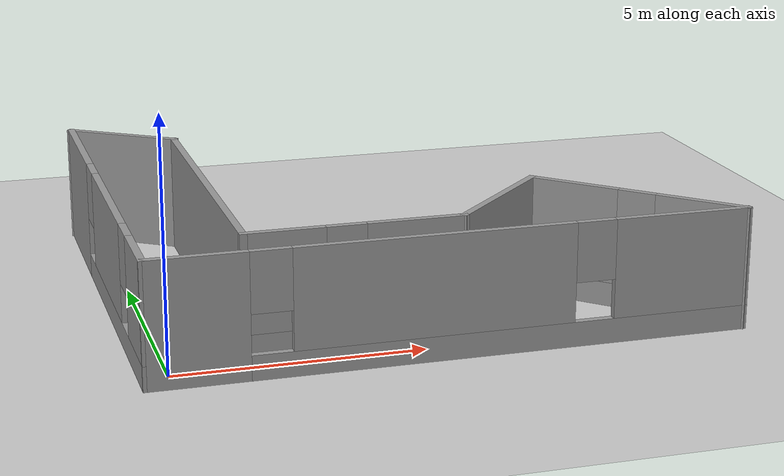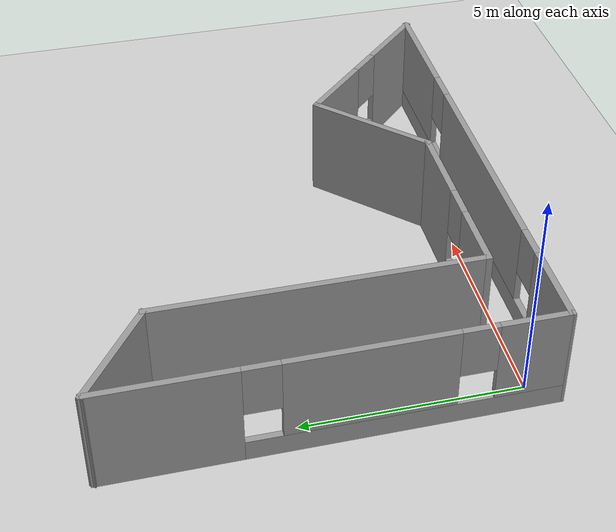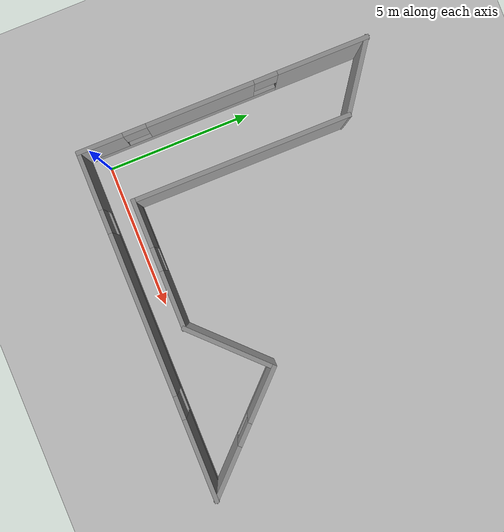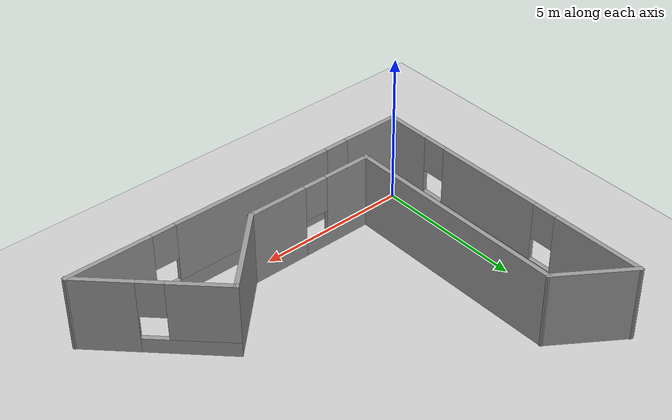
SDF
<sdf version="1.6">
 <world name="default">
  <light name="sun" type="directional">
   <pose>0 0 10 0 -0 0</pose>
   <diffuse>0.8 0.8 0.8 1</diffuse>
   <specular>0.2 0.2 0.2 1</specular>
   <attenuation>
    <range>1000</range>
    <constant>0.9</constant>
    <linear>0.01</linear>
    <quadratic>0.001</quadratic>
   </attenuation>
   <direction>-0.5 0.1 -0.9</direction>
  </light>
  <model name="ground_plane">
   <static>1</static>
   <link name="link">
    <collision name="collision">
     <geometry><plane><normal>0 0 1</normal><size>100 100</size></plane></geometry>
     <surface>
      <contact><collide_bitmask>65535</collide_bitmask></contact>
      <friction><ode><mu>100</mu><mu2>50</mu2></ode></friction>
     </surface>
    </collision>
    <visual name="visual">
     <cast_shadows>0</cast_shadows>
     <geometry><plane><normal>0 0 1</normal><size>100 100</size></plane></geometry>
     <material>
      <script><uri>file://media/materials/scripts/gazebo.material</uri><name>Gazebo/Grey</name></script>
     </material>
    </visual>
   </link>
  </model>
  <gravity>0 0 -9.8</gravity>
  <magnetic_field>6e-06 2.3e-05 -4.2e-05</magnetic_field>
  <atmosphere type="adiabatic"/>
  <physics name="default_physics" default="0" type="ode">
   <max_step_size>0.001</max_step_size>
   <real_time_factor>1</real_time_factor>
   <real_time_update_rate>1000</real_time_update_rate>
  </physics>
  <scene><ambient>0.4 0.4 0.4 1</ambient><background>0.7 0.7 0.7 1</background><shadows>1</shadows></scene>
  <spherical_coordinates>
   <surface_model>EARTH_WGS84</surface_model>
   <latitude_deg>0</latitude_deg>
   <longitude_deg>0</longitude_deg>
   <elevation>0</elevation>
   <heading_deg>0</heading_deg>
  </spherical_coordinates>
  <model name="museum">
   <pose>5.40787 4.33049 0 0 -0 0</pose>
   <link name="Wall_0">
    <pose>-5.92587 0.000867 0 0 0 -1.56784</pose>
    <visual name="Wall_0_Visual_0">
     <pose>-3.4362 0 1.25 0 -0 0</pose>
     <geometry><box><size>3.1276 0.15 2.5</size></box></geometry>
     <material>
      <script><uri>file://media/materials/scripts/gazebo.material</uri><name>Gazebo/Grey</name></script>
      <ambient>1 1 1 1</ambient>
     </material>
     <meta><layer>0</layer></meta>
    </visual>
    <collision name="Wall_0_Collision_0">
     <geometry><box><size>3.1276 0.15 2.5</size></box></geometry>
     <pose>-3.4362 0 1.25 0 -0 0</pose>
    </collision>
    <visual name="Wall_0_Visual_1">
     <pose>1.5638 0 0.25 0 -0 0</pose>
     <geometry><box><size>6.8724 0.15 0.5</size></box></geometry>
     <material>
      <script><uri>file://media/materials/scripts/gazebo.material</uri><name>Gazebo/Grey</name></script>
      <ambient>1 1 1 1</ambient>
     </material>
     <meta><layer>0</layer></meta>
    </visual>
    <collision name="Wall_0_Collision_1">
     <geometry><box><size>6.8724 0.15 0.5</size></box></geometry>
     <pose>1.5638 0 0.25 0 -0 0</pose>
    </collision>
    <visual name="Wall_0_Visual_2">
     <pose>0.765762 0 1.5 0 -0 0</pose>
     <geometry><box><size>3.67633 0.15 2</size></box></geometry>
     <material>
      <script><uri>file://media/materials/scripts/gazebo.material</uri><name>Gazebo/Grey</name></script>
      <ambient>1 1 1 1</ambient>
     </material>
     <meta><layer>0</layer></meta>
    </visual>
    <collision name="Wall_0_Collision_2">
     <geometry><box><size>3.67633 0.15 2</size></box></geometry>
     <pose>0.765762 0 1.5 0 -0 0</pose>
    </collision>
    <visual name="Wall_0_Visual_3">
     <pose>4.20196 0 1.5 0 -0 0</pose>
     <geometry><box><size>1.59607 0.15 2</size></box></geometry>
     <material>
      <script><uri>file://media/materials/scripts/gazebo.material</uri><name>Gazebo/Grey</name></script>
      <ambient>1 1 1 1</ambient>
     </material>
     <meta><layer>0</layer></meta>
    </visual>
    <collision name="Wall_0_Collision_3">
     <geometry><box><size>1.59607 0.15 2</size></box></geometry>
     <pose>4.20196 0 1.5 0 -0 0</pose>
    </collision>
    <visual name="Wall_0_Visual_4">
     <pose>-1.4724 0 1.9 0 -0 0</pose>
     <geometry><box><size>0.8 0.15 1.2</size></box></geometry>
     <material>
      <script><uri>file://media/materials/scripts/gazebo.material</uri><name>Gazebo/Grey</name></script>
      <ambient>1 1 1 1</ambient>
     </material>
     <meta><layer>0</layer></meta>
    </visual>
    <collision name="Wall_0_Collision_4">
     <geometry><box><size>0.8 0.15 1.2</size></box></geometry>
     <pose>-1.4724 0 1.9 0 -0 0</pose>
    </collision>
    <visual name="Wall_0_Visual_5">
     <pose>3.00393 0 1.9 0 -0 0</pose>
     <geometry><box><size>0.8 0.15 1.2</size></box></geometry>
     <material>
      <script><uri>file://media/materials/scripts/gazebo.material</uri><name>Gazebo/Grey</name></script>
      <ambient>1 1 1 1</ambient>
     </material>
     <meta><layer>0</layer></meta>
    </visual>
    <collision name="Wall_0_Collision_5">
     <geometry><box><size>0.8 0.15 1.2</size></box></geometry>
     <pose>3.00393 0 1.9 0 -0 0</pose>
    </collision>
   </link>
   <link name="Wall_2">
    <pose>0.01371 -4.92411 0 0 -0 0</pose>
    <visual name="Wall_2_Visual_0">
     <pose>-4.99135 0 1.25 0 -0 0</pose>
     <geometry><box><size>2.01729 0.15 2.5</size></box></geometry>
     <material>
      <script><uri>file://media/materials/scripts/gazebo.material</uri><name>Gazebo/Grey</name></script>
      <ambient>1 1 1 1</ambient>
     </material>
     <meta><layer>0</layer></meta>
    </visual>
    <collision name="Wall_2_Collision_0">
     <geometry><box><size>2.01729 0.15 2.5</size></box></geometry>
     <pose>-4.99135 0 1.25 0 -0 0</pose>
    </collision>
    <visual name="Wall_2_Visual_1">
     <pose>1.00865 0 0.25 0 -0 0</pose>
     <geometry><box><size>9.98271 0.15 0.5</size></box></geometry>
     <material>
      <script><uri>file://media/materials/scripts/gazebo.material</uri><name>Gazebo/Grey</name></script>
      <ambient>1 1 1 1</ambient>
     </material>
     <meta><layer>0</layer></meta>
    </visual>
    <collision name="Wall_2_Collision_1">
     <geometry><box><size>9.98271 0.15 0.5</size></box></geometry>
     <pose>1.00865 0 0.25 0 -0 0</pose>
    </collision>
    <visual name="Wall_2_Visual_2">
     <pose>-0.409254 0 1.5 0 -0 0</pose>
     <geometry><box><size>5.54691 0.15 2</size></box></geometry>
     <material>
      <script><uri>file://media/materials/scripts/gazebo.material</uri><name>Gazebo/Grey</name></script>
      <ambient>1 1 1 1</ambient>
     </material>
     <meta><layer>0</layer></meta>
    </visual>
    <collision name="Wall_2_Collision_2">
     <geometry><box><size>5.54691 0.15 2</size></box></geometry>
     <pose>-0.409254 0 1.5 0 -0 0</pose>
    </collision>
    <visual name="Wall_2_Visual_3">
     <pose>4.5821 0 1.5 0 -0 0</pose>
     <geometry><box><size>2.8358 0.15 2</size></box></geometry>
     <material>
      <script><uri>file://media/materials/scripts/gazebo.material</uri><name>Gazebo/Grey</name></script>
      <ambient>1 1 1 1</ambient>
     </material>
     <meta><layer>0</layer></meta>
    </visual>
    <collision name="Wall_2_Collision_3">
     <geometry><box><size>2.8358 0.15 2</size></box></geometry>
     <pose>4.5821 0 1.5 0 -0 0</pose>
    </collision>
    <visual name="Wall_2_Visual_4">
     <pose>-3.58271 0 1.9 0 -0 0</pose>
     <geometry><box><size>0.8 0.15 1.2</size></box></geometry>
     <material>
      <script><uri>file://media/materials/scripts/gazebo.material</uri><name>Gazebo/Grey</name></script>
      <ambient>1 1 1 1</ambient>
     </material>
     <meta><layer>0</layer></meta>
    </visual>
    <collision name="Wall_2_Collision_4">
     <geometry><box><size>0.8 0.15 1.2</size></box></geometry>
     <pose>-3.58271 0 1.9 0 -0 0</pose>
    </collision>
    <visual name="Wall_2_Visual_5">
     <pose>2.7642 0 1.9 0 -0 0</pose>
     <geometry><box><size>0.8 0.15 1.2</size></box></geometry>
     <material>
      <script><uri>file://media/materials/scripts/gazebo.material</uri><name>Gazebo/Grey</name></script>
      <ambient>1 1 1 1</ambient>
     </material>
     <meta><layer>0</layer></meta>
    </visual>
    <collision name="Wall_2_Collision_5">
     <geometry><box><size>0.8 0.15 1.2</size></box></geometry>
     <pose>2.7642 0 1.9 0 -0 0</pose>
    </collision>
   </link>
   <link name="Wall_5">
    <pose>4.31236 -3.29777 0 0 -0 2.35619</pose>
    <visual name="Wall_5_Visual_0">
     <pose>-1.4024 0 1.25 0 -0 0</pose>
     <geometry><box><size>1.9452 0.15 2.5</size></box></geometry>
     <material>
      <script><uri>file://media/materials/scripts/gazebo.material</uri><name>Gazebo/Grey</name></script>
      <ambient>1 1 1 1</ambient>
     </material>
     <meta><layer>0</layer></meta>
    </visual>
    <collision name="Wall_5_Collision_0">
     <geometry><box><size>1.9452 0.15 2.5</size></box></geometry>
     <pose>-1.4024 0 1.25 0 -0 0</pose>
    </collision>
    <visual name="Wall_5_Visual_1">
     <pose>0.9726 0 0.25 0 -0 0</pose>
     <geometry><box><size>2.8048 0.15 0.5</size></box></geometry>
     <material>
      <script><uri>file://media/materials/scripts/gazebo.material</uri><name>Gazebo/Grey</name></script>
      <ambient>1 1 1 1</ambient>
     </material>
     <meta><layer>0</layer></meta>
    </visual>
    <collision name="Wall_5_Collision_1">
     <geometry><box><size>2.8048 0.15 0.5</size></box></geometry>
     <pose>0.9726 0 0.25 0 -0 0</pose>
    </collision>
    <visual name="Wall_5_Visual_2">
     <pose>1.3726 0 1.5 0 -0 0</pose>
     <geometry><box><size>2.0048 0.15 2</size></box></geometry>
     <material>
      <script><uri>file://media/materials/scripts/gazebo.material</uri><name>Gazebo/Grey</name></script>
      <ambient>1 1 1 1</ambient>
     </material>
     <meta><layer>0</layer></meta>
    </visual>
    <collision name="Wall_5_Collision_2">
     <geometry><box><size>2.0048 0.15 2</size></box></geometry>
     <pose>1.3726 0 1.5 0 -0 0</pose>
    </collision>
    <visual name="Wall_5_Visual_3">
     <pose>-0.0298 0 1.9 0 -0 0</pose>
     <geometry><box><size>0.8 0.15 1.2</size></box></geometry>
     <material>
      <script><uri>file://media/materials/scripts/gazebo.material</uri><name>Gazebo/Grey</name></script>
      <ambient>1 1 1 1</ambient>
     </material>
     <meta><layer>0</layer></meta>
    </visual>
    <collision name="Wall_5_Collision_3">
     <geometry><box><size>0.8 0.15 1.2</size></box></geometry>
     <pose>-0.0298 0 1.9 0 -0 0</pose>
    </collision>
   </link>
   <link name="Wall_6">
    <collision name="Wall_6_Collision">
     <geometry><box><size>3.25 0.15 2.5</size></box></geometry>
     <pose>0 0 1.25 0 -0 0</pose>
    </collision>
    <visual name="Wall_6_Visual">
     <pose>0 0 1.25 0 -0 0</pose>
     <geometry><box><size>3.25 0.15 2.5</size></box></geometry>
     <material>
      <script><uri>file://media/materials/scripts/gazebo.material</uri><name>Gazebo/Grey</name></script>
      <ambient>1 1 1 1</ambient>
     </material>
     <meta><layer>0</layer></meta>
    </visual>
    <pose>1.59 -2.76743 0 0 0 -2.35619</pose>
   </link>
   <link name="Wall_7">
    <pose>-1.68101 -3.86345 0 0 -0 3.14159</pose>
    <visual name="Wall_7_Visual_0">
     <pose>-1.2354 0 1.25 0 -0 0</pose>
     <geometry><box><size>2.0292 0.15 2.5</size></box></geometry>
     <material>
      <script><uri>file://media/materials/scripts/gazebo.material</uri><name>Gazebo/Grey</name></script>
      <ambient>1 1 1 1</ambient>
     </material>
     <meta><layer>0</layer></meta>
    </visual>
    <collision name="Wall_7_Collision_0">
     <geometry><box><size>2.0292 0.15 2.5</size></box></geometry>
     <pose>-1.2354 0 1.25 0 -0 0</pose>
    </collision>
    <visual name="Wall_7_Visual_1">
     <pose>1.0146 0 0.25 0 -0 0</pose>
     <geometry><box><size>2.4708 0.15 0.5</size></box></geometry>
     <material>
      <script><uri>file://media/materials/scripts/gazebo.material</uri><name>Gazebo/Grey</name></script>
      <ambient>1 1 1 1</ambient>
     </material>
     <meta><layer>0</layer></meta>
    </visual>
    <collision name="Wall_7_Collision_1">
     <geometry><box><size>2.4708 0.15 0.5</size></box></geometry>
     <pose>1.0146 0 0.25 0 -0 0</pose>
    </collision>
    <visual name="Wall_7_Visual_2">
     <pose>1.4146 0 1.5 0 -0 0</pose>
     <geometry><box><size>1.6708 0.15 2</size></box></geometry>
     <material>
      <script><uri>file://media/materials/scripts/gazebo.material</uri><name>Gazebo/Grey</name></script>
      <ambient>1 1 1 1</ambient>
     </material>
     <meta><layer>0</layer></meta>
    </visual>
    <collision name="Wall_7_Collision_2">
     <geometry><box><size>1.6708 0.15 2</size></box></geometry>
     <pose>1.4146 0 1.5 0 -0 0</pose>
    </collision>
    <visual name="Wall_7_Visual_3">
     <pose>0.179203 0 1.9 0 -0 0</pose>
     <geometry><box><size>0.8 0.15 1.2</size></box></geometry>
     <material>
      <script><uri>file://media/materials/scripts/gazebo.material</uri><name>Gazebo/Grey</name></script>
      <ambient>1 1 1 1</ambient>
     </material>
     <meta><layer>0</layer></meta>
    </visual>
    <collision name="Wall_7_Collision_3">
     <geometry><box><size>0.8 0.15 1.2</size></box></geometry>
     <pose>0.179203 0 1.9 0 -0 0</pose>
    </collision>
   </link>
   <link name="Wall_8">
    <collision name="Wall_8_Collision">
     <geometry><box><size>7.5 0.15 2.5</size></box></geometry>
     <pose>0 0 1.25 0 -0 0</pose>
    </collision>
    <visual name="Wall_8_Visual">
     <pose>0 0 1.25 0 -0 0</pose>
     <geometry><box><size>7.5 0.15 2.5</size></box></geometry>
     <material>
      <script><uri>file://media/materials/scripts/gazebo.material</uri><name>Gazebo/Grey</name></script>
      <ambient>1 1 1 1</ambient>
     </material>
     <meta><layer>0</layer></meta>
    </visual>
    <pose>-3.85601 -0.188451 0 0 -0 1.5708</pose>
   </link>
   <link name="Wall_9">
    <collision name="Wall_9_Collision">
     <geometry><box><size>2.68307 0.15 2.5</size></box></geometry>
     <pose>0 0 1.25 0 -0 0</pose>
    </collision>
    <visual name="Wall_9_Visual">
     <pose>0 0 1.25 0 -0 0</pose>
     <geometry><box><size>2.68307 0.15 2.5</size></box></geometry>
     <material>
      <script><uri>file://media/materials/scripts/gazebo.material</uri><name>Gazebo/Grey</name></script>
      <ambient>1 1 1 1</ambient>
     </material>
     <meta><layer>0</layer></meta>
    </visual>
    <pose>-4.89823 4.2062 0 0 -0 2.53727</pose>
   </link>
   <static>1</static>
  </model>
 </world>
</sdf>
